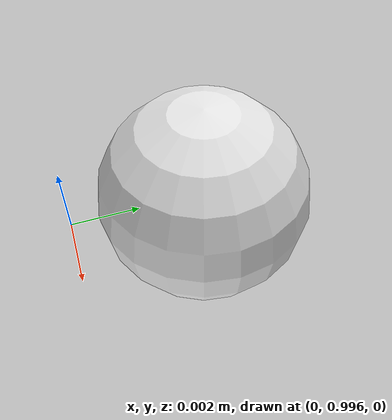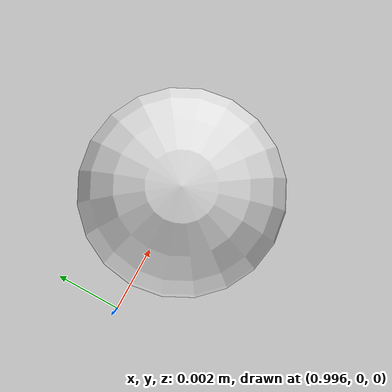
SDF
<sdf version="1.9">
  <world name="example_motion_capture">
    <include>
      <name>origin_mocap</name>
      <uri>model://motion_capture_system</uri>
      <pose>0 0 0 0 0 0</pose>
      <static>true</static>
    </include>

    <include>
      <name>rotated_mocap</name>
      <uri>model://motion_capture_system</uri>
      <pose>0 0 0 0 0 1.5707</pose>
      <static>true</static>
    </include>

    <include>
      <uri>model://motion_capture_rigid_body</uri>
      <name>calibration_link_x</name>
      <pose>1 0 0 0 0 0</pose>
      <static>true</static>
    </include>

    <include>
      <uri>model://motion_capture_rigid_body</uri>
      <name>calibration_link_y</name>
      <pose>0 1 0 0 0 0</pose>
      <static>true</static>
    </include>

    <include>
      <uri>model://motion_capture_rigid_body</uri>
      <name>calibration_link_z</name>
      <pose>0 1 0 0 0 0</pose>
      <static>true</static>
    </include>
  </world>
</sdf>

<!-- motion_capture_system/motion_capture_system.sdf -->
<sdf version="1.9">
    <model name="motion_capture_system">
        <static>true</static>
        <link name="motion_capture_origin"/>
        <plugin filename="nexus_gazebo" name="nexus_gazebo::MotionCaptureSystem">
          <port>3883</port>
          <update_frequency>50.0</update_frequency>
          <stream_rigid_bodies>true</stream_rigid_bodies>
          <stream_labeled_markers>true</stream_labeled_markers>
          <stream_unlabeled_markers>true</stream_unlabeled_markers>
        </plugin>
    </model>
</sdf>

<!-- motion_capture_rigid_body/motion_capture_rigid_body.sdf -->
<sdf version="1.9">
    <model name="motion_capture_rigid_body">
        <link name="motion_capture_rigid_body">
            <visual name="visual0">
              <geometry>
                <sphere>
                  <!-- 1/4" marker bead -->
                  <radius>0.0032</radius>
                </sphere>
              </geometry>
              <material>
                <diffuse>0.9 0.9 0.9 1.0</diffuse>
              </material>
            </visual>
            <collision name="collision0">
              <geometry>
                <sphere>
                  <!-- 1/4" marker bead -->
                  <radius>0.0032</radius>
                </sphere>
              </geometry>
            </collision>
        </link>
        <plugin filename="nexus_gazebo" name="nexus_gazebo::MotionCaptureRigidBody"/>
    </model>
</sdf>
